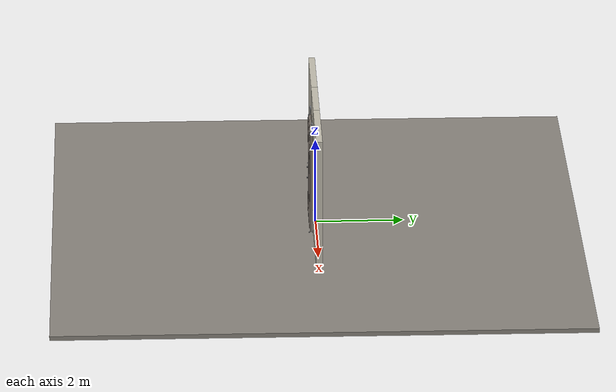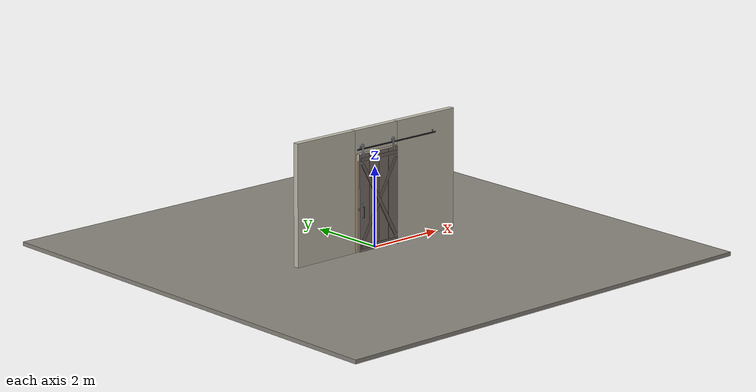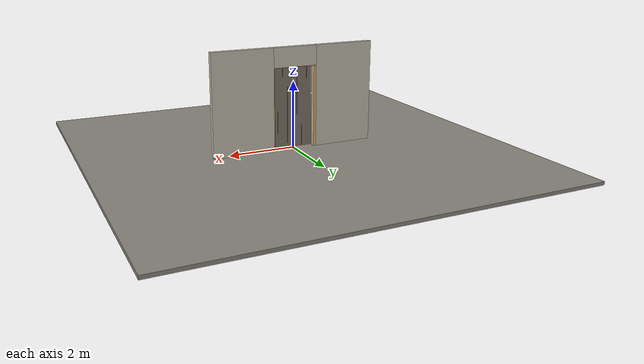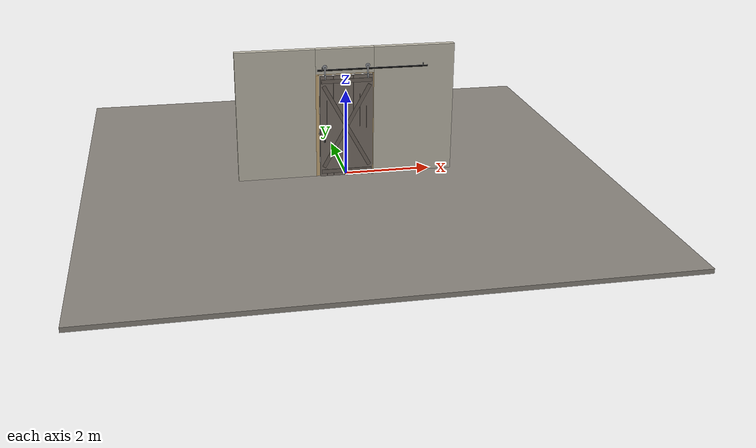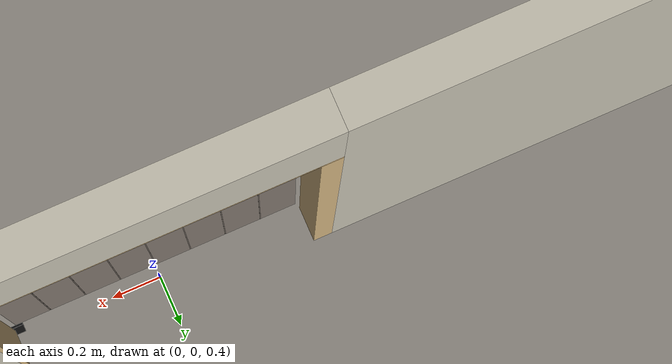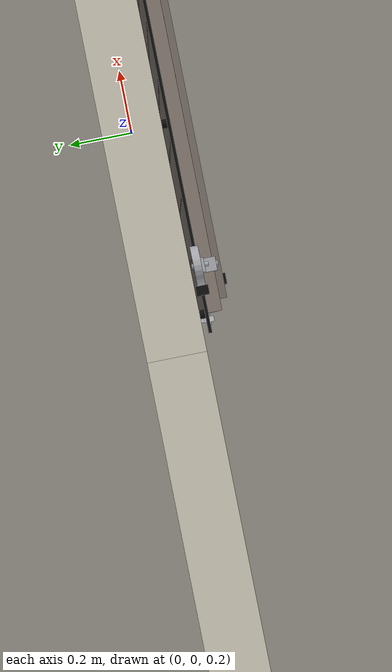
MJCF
<?xml version="1.0" ?>
<mujoco model="db0545_sliding_single_full">
  <compiler angle="radian" meshdir="../../hardware" texturedir="../../textures" autolimits="true" inertiafromgeom="false"/>
  <option timestep="0.002" integrator="implicitfast" cone="elliptic" impratio="10" noslip_iterations="3">
    <flag multiccd="enable"/>
  </option>
  <size memory="16M"/>
  <default>
    <geom condim="4" solref="0.005 1" solimp="0.95 0.99 0.001"/>
    <joint solreflimit="0.005 1" solimplimit="0.95 0.99 0.001"/>
    <tendon solreflimit="0.005 1"/>
    <equality solref="0.002 1"/>
  </default>
  <visual>
    <headlight ambient="0.4 0.4 0.4" diffuse="0.7 0.7 0.7" specular="0.2 0.2 0.2"/>
    <quality shadowsize="4096"/>
    <map znear="0.01" zfar="60"/>
  </visual>
  <asset>
    <mesh name="pull_2b47e55ff8" file="pull_2b47e55ff8.obj"/>
    <mesh name="thumbturn_eb5c9899a3" file="thumbturn_eb5c9899a3.obj"/>
    <material name="mat_floor" rgba="0.55 0.53 0.5 1" specular="0.2" shininess="0.15" reflectance="0"/>
    <material name="mat_wall" rgba="0.78 0.76 0.7 1" specular="0.2" shininess="0.1" reflectance="0"/>
    <material name="mat_frame" rgba="0.82 0.7 0.5 1" specular="0.2" shininess="0.45" reflectance="0"/>
    <material name="mat_track" rgba="0.05 0.05 0.05 1" specular="0.38" shininess="0.3" reflectance="0.12"/>
    <material name="mat_leaf" rgba="0.5 0.46 0.425 1" specular="0.2" shininess="0.15" reflectance="0"/>
    <material name="mat_leaf_brace" rgba="0.45 0.414 0.383 1" specular="0.2" shininess="0.2" reflectance="0"/>
    <material name="mat_roller" rgba="0.65 0.66 0.68 1" specular="0.74" shininess="0.5" reflectance="0.36"/>
    <material name="mat_op_black_matte_metal" rgba="0.05 0.05 0.05 1" specular="0.38" shininess="0.3" reflectance="0.12"/>
    <material name="mat_hook" rgba="0.75 0.76 0.77 1" specular="0.8" shininess="0.65" reflectance="0.4"/>
    <texture name="skybox" type="skybox" builtin="gradient" rgb1="0.6 0.7 0.85" rgb2="0.9 0.92 0.95" width="256" height="256"/>
  </asset>
  <worldbody>
    <light name="sun" pos="1.5 -2.5 4" dir="-0.3 0.5 -0.8" directional="true" diffuse="0.8 0.8 0.8" specular="0.3 0.3 0.3" castshadow="true"/>
    <light name="fill" pos="-1.5 2.5 3" dir="0.3 -0.5 -0.7" directional="true" diffuse="0.35 0.35 0.4" castshadow="false"/>
    <camera name="robot_view" pos="0 -2.89375 2.02025" xyaxes="1 0 0 0 0.26963 0.962964" fovy="52"/>
    <camera name="far_view" pos="0 2.89375 2.02025" xyaxes="-1 0 0 0 -0.26963 0.962964" fovy="52"/>
    <camera name="iso" pos="2.19925 -2.43075 2.48325" xyaxes="0.741536 0.670913 0 -0.242917 0.268487 0.932151" fovy="46"/>
    <camera name="detail_handle" pos="-0.3395 -0.9815 1.28" xyaxes="0.97561 0.219512 0 -0.070934 0.315262 0.94635" fovy="38"/>
    <geom name="floor" type="box" size="6 6 0.05" pos="0 0 -0.05" material="mat_floor" group="0" contype="1" conaffinity="1" friction="0.8 0.005 0.0001" density="2400"/>
    <geom name="wall_left" type="box" size="0.90075 0.0725 1.51" pos="-1.59925 0 1.51" material="mat_wall" group="0" contype="1" conaffinity="1" friction="0.6 0.005 0.0001" density="800"/>
    <geom name="wall_right" type="box" size="0.93075 0.0725 1.51" pos="1.56925 0 1.51" material="mat_wall" group="0" contype="1" conaffinity="1" friction="0.6 0.005 0.0001" density="800"/>
    <geom name="wall_header" type="box" size="0.6685 0.0725 0.2905" pos="-0.03 0 2.7295" material="mat_wall" group="0" contype="1" conaffinity="1" friction="0.6 0.005 0.0001" density="800"/>
    <geom name="jamb_r" type="box" size="0.0095 0.0725 1.21" pos="0.629 0 1.21" material="mat_frame" group="0" contype="1" conaffinity="1" friction="0.6 0.005 0.0001" density="300"/>
    <geom name="jamb_head" type="box" size="0.6385 0.0725 0.0095" pos="0 0 2.4295" material="mat_frame" group="0" contype="1" conaffinity="1" friction="0.6 0.005 0.0001" density="300"/>
    <geom name="flat_track" type="box" size="1.269 0.004 0.02" pos="0.6095 -0.0945 2.54" material="mat_track" group="0" contype="1" conaffinity="1" friction="0.6 0.005 0.0001" density="7850"/>
    <geom name="track_standoff_0" type="cylinder" size="0.012 0.009" pos="-0.6095 -0.0815 2.54" quat="0.707107 -0.707107 0 0" material="mat_track" group="1" contype="0" conaffinity="0" density="7850"/>
    <geom name="track_standoff_1" type="cylinder" size="0.012 0.009" pos="-0.1219 -0.0815 2.54" quat="0.707107 -0.707107 0 0" material="mat_track" group="1" contype="0" conaffinity="0" density="7850"/>
    <geom name="track_standoff_2" type="cylinder" size="0.012 0.009" pos="0.3657 -0.0815 2.54" quat="0.707107 -0.707107 0 0" material="mat_track" group="1" contype="0" conaffinity="0" density="7850"/>
    <geom name="track_standoff_3" type="cylinder" size="0.012 0.009" pos="0.8533 -0.0815 2.54" quat="0.707107 -0.707107 0 0" material="mat_track" group="1" contype="0" conaffinity="0" density="7850"/>
    <geom name="track_standoff_4" type="cylinder" size="0.012 0.009" pos="1.3409 -0.0815 2.54" quat="0.707107 -0.707107 0 0" material="mat_track" group="1" contype="0" conaffinity="0" density="7850"/>
    <geom name="track_standoff_5" type="cylinder" size="0.012 0.009" pos="1.8285 -0.0815 2.54" quat="0.707107 -0.707107 0 0" material="mat_track" group="1" contype="0" conaffinity="0" density="7850"/>
    <geom name="leaf_track_stop_l" type="box" size="0.012 0.016 0.027" pos="-0.5515 -0.0945 2.585" material="mat_track" group="0" contype="1" conaffinity="1" friction="0.6 0.005 0.0001" density="7850"/>
    <geom name="leaf_track_stop_r" type="box" size="0.012 0.016 0.027" pos="1.7705 -0.0945 2.585" material="mat_track" group="0" contype="1" conaffinity="1" friction="0.6 0.005 0.0001" density="7850"/>
    <geom name="leaf_hook_keeper" type="box" size="0.008 0.015 0.006" pos="-0.6275 -0.1145 1.08" material="mat_hook" group="0" contype="1" conaffinity="1" friction="0.6 0.005 0.0001" density="7900"/>
    <geom name="jamb_latch_0" type="box" size="0.0395 0.0725 1.21" pos="-0.659 0 1.21" material="mat_frame" group="0" contype="1" conaffinity="1" friction="0.6 0.005 0.0001" density="300"/>
    <geom name="floor_guide_n" type="box" size="0.028 0.004 0.009" pos="0.6095 -0.1415 0.009" material="mat_track" group="0" contype="1" conaffinity="1" friction="0.6 0.005 0.0001" density="7850"/>
    <geom name="floor_guide_n_foot" type="box" size="0.028 0.018 0.002" pos="0.6095 -0.1555 0.002" material="mat_track" group="0" contype="1" conaffinity="1" friction="0.6 0.005 0.0001" density="7850"/>
    <geom name="floor_guide_p" type="box" size="0.028 0.004 0.009" pos="0.6095 -0.0875 0.009" material="mat_track" group="0" contype="1" conaffinity="1" friction="0.6 0.005 0.0001" density="7850"/>
    <geom name="floor_guide_p_foot" type="box" size="0.028 0.018 0.002" pos="0.6095 -0.0735 0.002" material="mat_track" group="0" contype="1" conaffinity="1" friction="0.6 0.005 0.0001" density="7850"/>
    <geom name="leaf_hook_keeper_bracket" type="box" size="0.0064 0.014 0.005" pos="-0.6275 -0.086 1.08" material="mat_hook" group="1" contype="0" conaffinity="0" density="7850"/>
    <site name="approach_point" pos="0 -1.5 0" quat="1 0 0 0" size="0.05" rgba="0.2 0.9 0.2 0.5" group="4"/>
    <site name="goal_point" pos="0 1.5 0" quat="1 0 0 0" size="0.05" rgba="0.2 0.9 0.2 0.5" group="4"/>
    <site name="door_plane_center" pos="0 0 1.21" quat="1 0 0 0" size="0.02" rgba="0.2 0.9 0.2 0.5" group="4"/>
    <body name="leaf" pos="0 -0.1145 0">
      <inertial pos="-0.004028 0.000084 1.295639" mass="62.537678" quat="0.500724 -0.500674 -0.50013 -0.498469" diaginertia="8.29134698 34.625521503 42.891819237"/>
      <joint name="leaf_slide" type="slide" axis="1 0 0" limited="true" range="0 1.219" damping="5.139434" frictionloss="73.889584" armature="0.5"/>
      <geom name="leaf_slab" type="box" size="0.6095 0.022 1.2" pos="0 0 1.212" material="mat_leaf" group="0" contype="1" conaffinity="1" friction="0.45 0.005 0.0001" density="1"/>
      <geom name="leaf_plank_gap_1" type="box" size="0.002 0.023 1.19" pos="-0.457125 0 1.212" material="mat_leaf_brace" group="1" contype="0" conaffinity="0" density="1"/>
      <geom name="leaf_plank_gap_2" type="box" size="0.002 0.023 1.19" pos="-0.30475 0 1.212" material="mat_leaf_brace" group="1" contype="0" conaffinity="0" density="1"/>
      <geom name="leaf_plank_gap_3" type="box" size="0.002 0.023 1.19" pos="-0.152375 0 1.212" material="mat_leaf_brace" group="1" contype="0" conaffinity="0" density="1"/>
      <geom name="leaf_plank_gap_4" type="box" size="0.002 0.023 1.19" pos="0 0 1.212" material="mat_leaf_brace" group="1" contype="0" conaffinity="0" density="1"/>
      <geom name="leaf_plank_gap_5" type="box" size="0.002 0.023 1.19" pos="0.152375 0 1.212" material="mat_leaf_brace" group="1" contype="0" conaffinity="0" density="1"/>
      <geom name="leaf_plank_gap_6" type="box" size="0.002 0.023 1.19" pos="0.30475 0 1.212" material="mat_leaf_brace" group="1" contype="0" conaffinity="0" density="1"/>
      <geom name="leaf_plank_gap_7" type="box" size="0.002 0.023 1.19" pos="0.457125 0 1.212" material="mat_leaf_brace" group="1" contype="0" conaffinity="0" density="1"/>
      <geom name="leaf_batten_13" type="box" size="0.5795 0.01 0.045" pos="0 -0.032 0.132" material="mat_leaf_brace" group="1" contype="0" conaffinity="0" density="1"/>
      <geom name="leaf_batten_229" type="box" size="0.5795 0.01 0.045" pos="0 -0.032 2.292" material="mat_leaf_brace" group="1" contype="0" conaffinity="0" density="1"/>
      <geom name="leaf_brace_z" type="box" size="1.107761 0.01 0.045" pos="0 -0.032 1.212" quat="0.859977 0 -0.510332 0" material="mat_leaf_brace" group="1" contype="0" conaffinity="0" density="1"/>
      <geom name="leaf_brace_x" type="box" size="1.107761 0.01 0.045" pos="0 -0.032 1.212" quat="0.859977 0 0.510332 0" material="mat_leaf_brace" group="1" contype="0" conaffinity="0" density="1"/>
      <geom name="leaf_hanger_wheel_0" type="cylinder" size="0.05 0.01" pos="-0.4895 0.02 2.61" quat="0.707107 -0.707107 0 0" material="mat_roller" group="1" contype="0" conaffinity="0" density="7850"/>
      <geom name="leaf_hanger_mount_0" type="box" size="0.018 0.004 0.0725" pos="-0.4895 -0.026 2.3645" material="mat_roller" group="1" contype="0" conaffinity="0" density="7850"/>
      <geom name="leaf_hanger_strap_0" type="box" size="0.018 0.004 0.0925" pos="-0.4895 0.006 2.5295" material="mat_roller" group="1" contype="0" conaffinity="0" density="7850"/>
      <geom name="leaf_hanger_bend_0" type="box" size="0.018 0.02 0.004" pos="-0.4895 -0.01 2.437" material="mat_roller" group="1" contype="0" conaffinity="0" density="7850"/>
      <geom name="leaf_hanger_axle_0" type="cylinder" size="0.006 0.021" pos="-0.4895 0.013 2.61" quat="0.707107 -0.707107 0 0" material="mat_roller" group="1" contype="0" conaffinity="0" density="7850"/>
      <geom name="leaf_hanger_bolt_0_90" type="cylinder" size="0.007 0.004" pos="-0.4895 -0.032 2.322" quat="0.707107 -0.707107 0 0" material="mat_roller" group="1" contype="0" conaffinity="0" density="7850"/>
      <geom name="leaf_hanger_bolt_0_45" type="cylinder" size="0.007 0.004" pos="-0.4895 -0.032 2.367" quat="0.707107 -0.707107 0 0" material="mat_roller" group="1" contype="0" conaffinity="0" density="7850"/>
      <geom name="leaf_hanger_wheel_1" type="cylinder" size="0.05 0.01" pos="0.4895 0.02 2.61" quat="0.707107 -0.707107 0 0" material="mat_roller" group="1" contype="0" conaffinity="0" density="7850"/>
      <geom name="leaf_hanger_mount_1" type="box" size="0.018 0.004 0.0725" pos="0.4895 -0.026 2.3645" material="mat_roller" group="1" contype="0" conaffinity="0" density="7850"/>
      <geom name="leaf_hanger_strap_1" type="box" size="0.018 0.004 0.0925" pos="0.4895 0.006 2.5295" material="mat_roller" group="1" contype="0" conaffinity="0" density="7850"/>
      <geom name="leaf_hanger_bend_1" type="box" size="0.018 0.02 0.004" pos="0.4895 -0.01 2.437" material="mat_roller" group="1" contype="0" conaffinity="0" density="7850"/>
      <geom name="leaf_hanger_axle_1" type="cylinder" size="0.006 0.021" pos="0.4895 0.013 2.61" quat="0.707107 -0.707107 0 0" material="mat_roller" group="1" contype="0" conaffinity="0" density="7850"/>
      <geom name="leaf_hanger_bolt_1_90" type="cylinder" size="0.007 0.004" pos="0.4895 -0.032 2.322" quat="0.707107 -0.707107 0 0" material="mat_roller" group="1" contype="0" conaffinity="0" density="7850"/>
      <geom name="leaf_hanger_bolt_1_45" type="cylinder" size="0.007 0.004" pos="0.4895 -0.032 2.367" quat="0.707107 -0.707107 0 0" material="mat_roller" group="1" contype="0" conaffinity="0" density="7850"/>
      <geom name="leaf_pull_n" type="mesh" mesh="pull_2b47e55ff8" pos="-0.5195 -0.022 1" quat="0 0 -0.707107 0.707107" material="mat_op_black_matte_metal" group="1" contype="0" conaffinity="0" density="3000"/>
      <geom name="leaf_pull_col_n" type="capsule" size="0.006 0.13" pos="-0.5195 -0.067 1" material="mat_op_black_matte_metal" group="3" contype="1" conaffinity="1" rgba="0.8 0.3 0.3 0.25" friction="0.7 0.01 0.0001" density="3000"/>
      <geom name="leaf_hook_faceplate" type="box" size="0.0006 0.011 0.045" pos="-0.6089 0 1.08" material="mat_hook" group="1" contype="0" conaffinity="0" density="7900"/>
      <site name="leaf_pull_grip_n" pos="-0.5195 -0.067 1" quat="1 0 0 0" size="0.012" rgba="0.2 0.9 0.2 0.5" group="4"/>
      <site name="leaf_edge_mid" pos="-0.6095 0 1.212" quat="1 0 0 0" size="0.02" rgba="0.2 0.9 0.2 0.5" group="4"/>
      <body name="leaf_hook_thumbturn" pos="-0.5495 -0.022 1.22">
        <inertial pos="0 -0.012928 0" mass="0.178946" quat="0.678504 0.199079 -0.199079 -0.678504" diaginertia="0.000026045 0.000026215 0.000032438"/>
        <joint name="leaf_hook_thumbturn_hinge" type="hinge" axis="0 1 0" limited="true" range="0 1" damping="0.05" frictionloss="0.25" armature="0.005" ref="1"/>
        <geom name="leaf_hook_tt_mesh" type="mesh" mesh="thumbturn_eb5c9899a3" pos="0 0 0" quat="0.339005 0.339005 -0.620545 0.620545" material="mat_hook" group="0" contype="1" conaffinity="1" friction="0.6 0.005 0.0001" density="7100"/>
        <geom name="leaf_hook_tt_col" type="box" size="0.006 0.012 0.016" pos="0 -0.02 0" quat="0.877583 0 0.479426 0" material="mat_hook" group="3" contype="1" conaffinity="1" rgba="0.8 0.3 0.3 0.25" friction="0.6 0.005 0.0001" density="7100"/>
        <site name="leaf_hook_tt_grip" pos="0 -0.03 0" quat="0.877583 0 0.479426 0" size="0.01" rgba="0.2 0.9 0.2 0.5" group="4"/>
      </body>
      <body name="leaf_hook" pos="-0.6095 0 1.08">
        <inertial pos="-0.006651 0 -0.027503" mass="0.072048" quat="0.148813 -0.148813 0.69127 0.69127" diaginertia="0.000005266 0.00001511 0.000019175"/>
        <joint name="leaf_hook_hinge" type="hinge" axis="0 -1 0" limited="true" range="0 1" damping="0.05" frictionloss="0.1" armature="0.005" ref="1"/>
        <geom name="leaf_hook_arm" type="box" size="0.022 0.005 0.006" pos="0.002657 0 -0.025474" quat="0.877583 0 -0.479426 0" material="mat_hook" group="0" contype="1" conaffinity="1" friction="0.6 0.005 0.0001" density="7900"/>
        <geom name="leaf_hook_tip" type="box" size="0.006 0.005 0.016" pos="-0.019451 0 -0.030293" quat="0.877583 0 -0.479426 0" material="mat_hook" group="0" contype="1" conaffinity="1" friction="0.6 0.005 0.0001" density="7900"/>
      </body>
    </body>
  </worldbody>
  <equality>
    <joint name="leaf_hook_couple" joint1="leaf_hook_hinge" joint2="leaf_hook_thumbturn_hinge" polycoef="0 1 0 0 0" active="true"/>
  </equality>
  <sensor>
    <jointpos name="leaf_slide_pos" joint="leaf_slide"/>
    <jointvel name="leaf_slide_vel" joint="leaf_slide"/>
    <jointpos name="leaf_hook_thumbturn_hinge_pos" joint="leaf_hook_thumbturn_hinge"/>
    <jointvel name="leaf_hook_thumbturn_hinge_vel" joint="leaf_hook_thumbturn_hinge"/>
    <jointpos name="leaf_hook_hinge_pos" joint="leaf_hook_hinge"/>
    <jointvel name="leaf_hook_hinge_vel" joint="leaf_hook_hinge"/>
  </sensor>
</mujoco>
